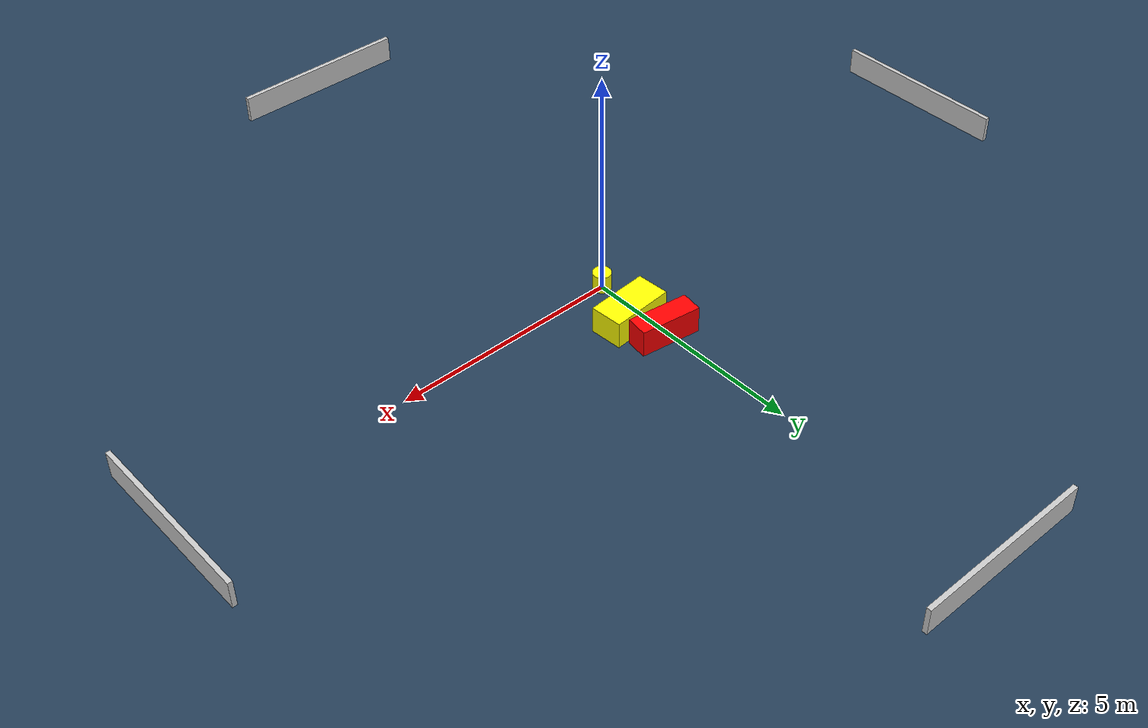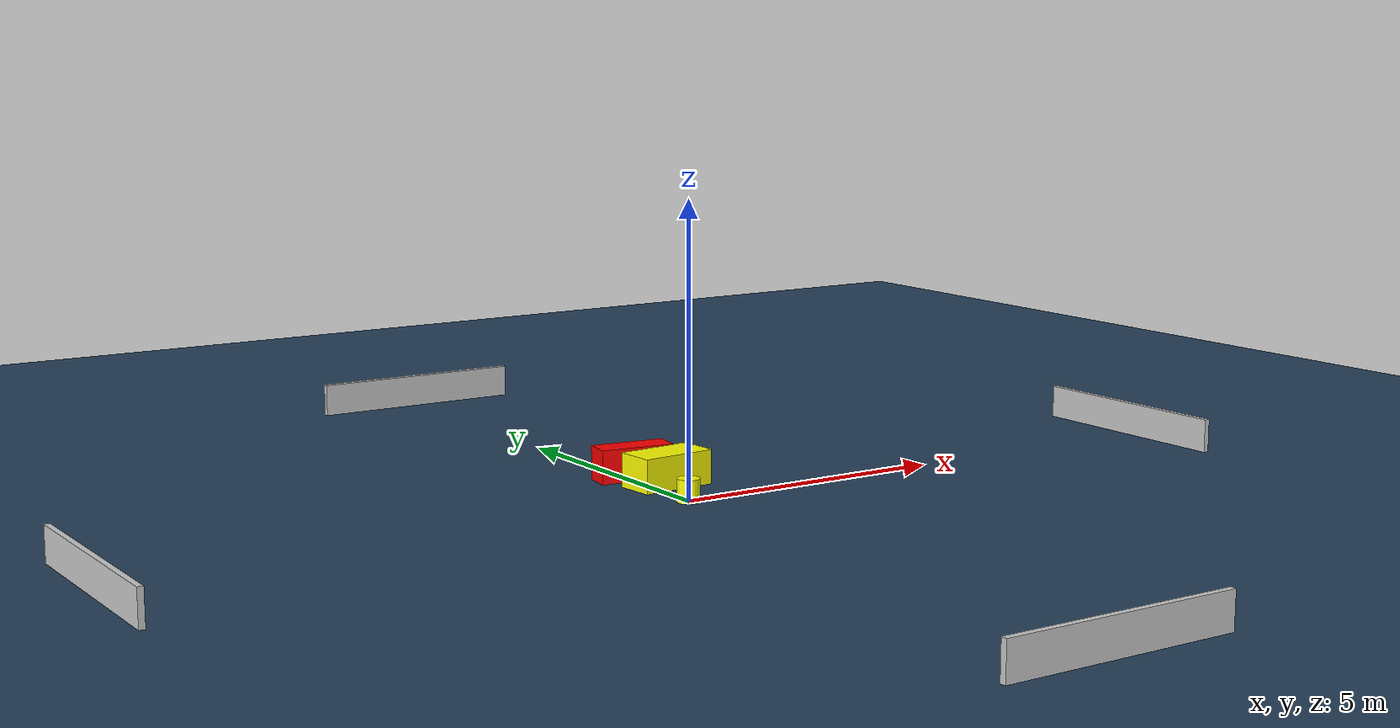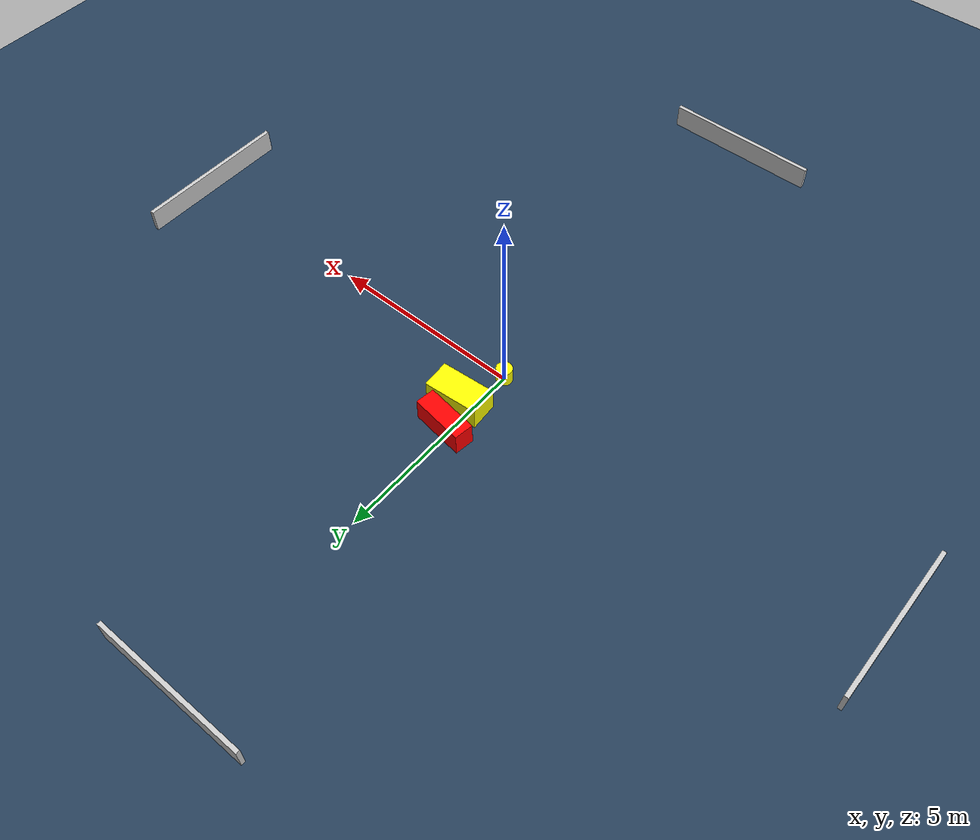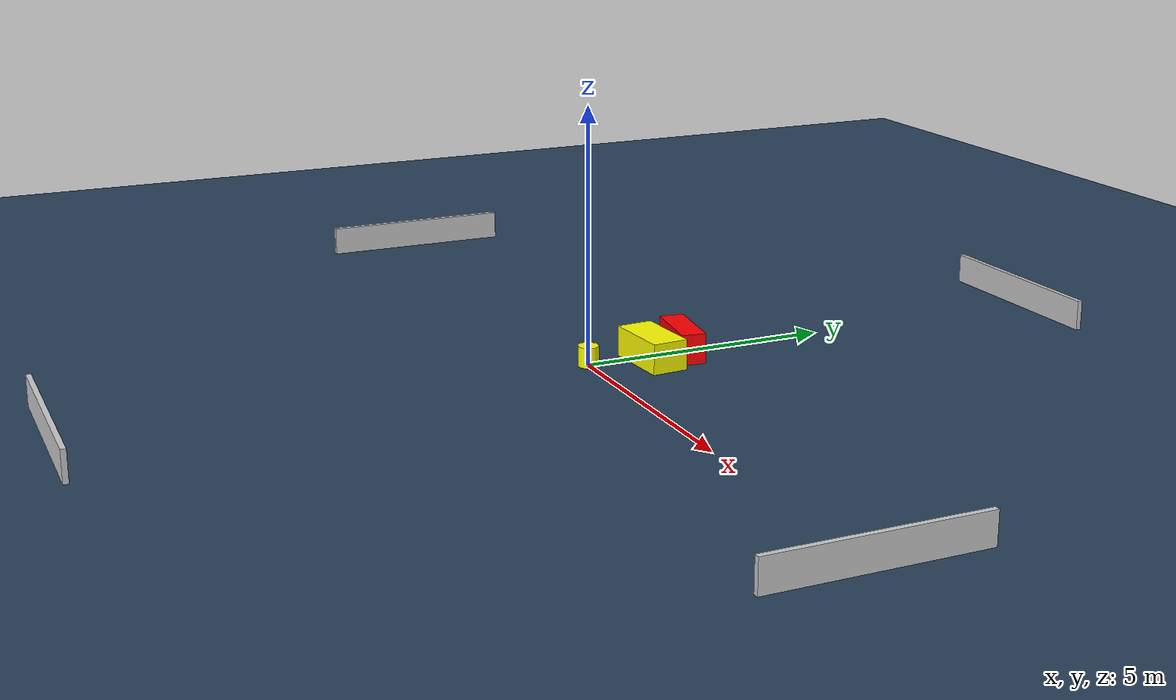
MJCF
<?xml version="1.0" ?>
<mujoco model="generated_environment">
  <option timestep="0.01" integrator="RK4" cone="elliptic"/>
  <default>
    <geom density="1"/>
  </default>
  <asset>
    <texture builtin="gradient" height="3072" name="skybox" rgb1="0.3 0.5 0.7" rgb2="0 0 0" type="skybox" width="512"/>
    <texture builtin="checker" height="300" name="groundplane" rgb1="0.2 0.3 0.4" rgb2="0.1 0.2 0.3" type="2d" width="300"/>
    <material name="groundplane" reflectance="0.2" texrepeat="5 5" texture="groundplane"/>
  </asset>
  <worldbody>
    <light dir="0 0 -1" directional="true" pos="0 0 1.5"/>
    <geom condim="3" friction="0.5 0.005 0.001" material="groundplane" name="floor" pos="0 0 0" size="0 0 0.05" type="plane"/>
    <body name="walls">
      <geom name="wall_1" condim="4" pos="-10.0 0.0 0.3" rgba="0.800000011920929 0.800000011920929 0.800000011920929 1.0" size="0.05 2.0 0.3" type="box"/>
      <geom name="wall_2" condim="4" pos="10.0 0.0 0.3" rgba="0.800000011920929 0.800000011920929 0.800000011920929 1.0" size="0.05 2.0 0.3" type="box"/>
      <geom name="wall_3" condim="4" pos="0.0 -10.0 0.3" rgba="0.800000011920929 0.800000011920929 0.800000011920929 1.0" size="2.0 0.05 0.3" type="box"/>
      <geom name="wall_4" condim="4" pos="0.0 10.0 0.3" rgba="0.800000011920929 0.800000011920929 0.800000011920929 1.0" size="2.0 0.05 0.3" type="box"/>
    </body>
    <body name="robot">
      <joint name="joint_x" type="slide" pos="0 0 0" axis="1 0 0"/>
      <joint name="joint_y" type="slide" pos="0 0 0" axis="0 1 0"/>
      <geom name="robot" type="cylinder" pos="0.0 0.0 0.2" size="0.2 0.2 0.0" mass="5.0" friction="1.0 0.005 0.0001" condim="4" rgba="1.0 1.0 0.0 1.0"/>
    </body>
    <body name="obstacle_1_movable">
      <geom name="obstacle_1_movable" condim="4" pos="0.3394304266737201 1.1835836617586752 0.3" euler="0 0 4.086816619052049" friction="0.0 0.005 0.001" rgba="1.0 1.0 0.0 1.0" size="0.6825852268450479 0.35795536683317153 0.3" type="box" mass="0.1"/>
      <joint type="free"/>
    </body>
    <body name="obstacle_2_static">
      <geom name="obstacle_2_static" condim="4" pos="0.12155261364930821 1.942471210675338 0.3" euler="0 0 351.97147536790004" friction="0.0 0.005 0.001" rgba="1.0 0.0 0.0 1.0" size="0.6662006527015547 0.24161959696156987 0.3" type="box"/>
    </body>
  </worldbody>
  <actuator>
    <motor name="actuator_x" joint="joint_x" gear="1" ctrlrange="-1 1"/>
    <motor name="actuator_y" joint="joint_y" gear="1" ctrlrange="-1 1"/>
  </actuator>
</mujoco>
